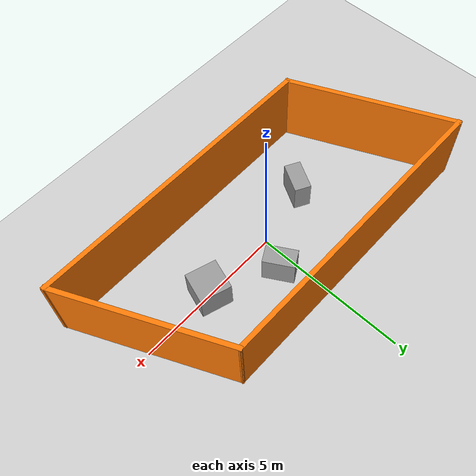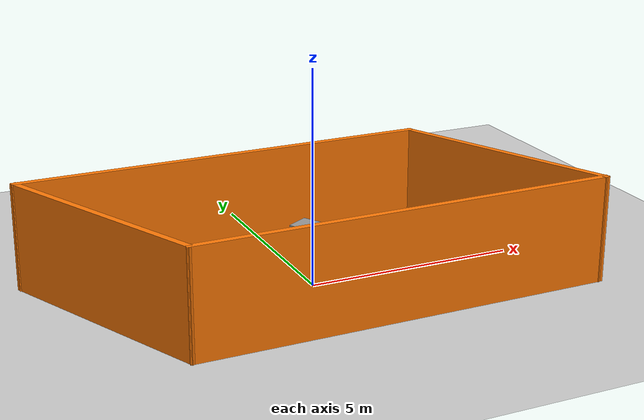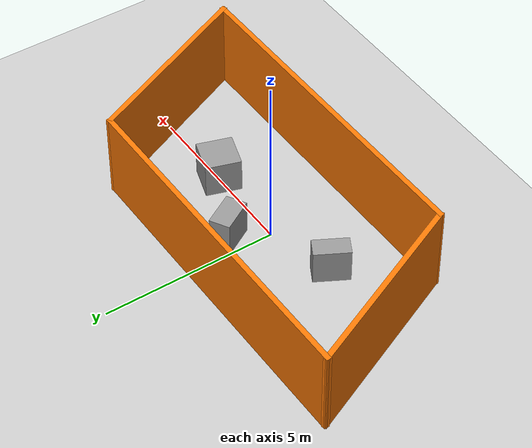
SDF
<sdf version="1.7">
 <world name="default">
  <light name="sun" type="directional">
   <pose>0 0 10 0 -0 0</pose>
   <diffuse>0.8 0.8 0.8 1</diffuse>
   <specular>0.2 0.2 0.2 1</specular>
   <attenuation>
    <range>1000</range>
    <constant>0.9</constant>
    <linear>0.01</linear>
    <quadratic>0.001</quadratic>
   </attenuation>
   <direction>-0.5 0.1 -0.9</direction>
   <spot><inner_angle>0</inner_angle><outer_angle>0</outer_angle><falloff>0</falloff></spot>
  </light>
  <model name="ground_plane">
   <static>1</static>
   <link name="link">
    <collision name="collision">
     <geometry><plane><normal>0 0 1</normal><size>100 100</size></plane></geometry>
     <surface>
      <contact><collide_bitmask>65535</collide_bitmask></contact>
      <friction><ode><mu>100</mu><mu2>50</mu2></ode></friction>
     </surface>
    </collision>
    <visual name="visual">
     <cast_shadows>0</cast_shadows>
     <geometry><plane><normal>0 0 1</normal><size>100 100</size></plane></geometry>
     <material>
      <script><uri>file://media/materials/scripts/gazebo.material</uri><name>Gazebo/Grey</name></script>
     </material>
    </visual>
   </link>
  </model>
  <gravity>0 0 -9.8</gravity>
  <magnetic_field>6e-06 2.3e-05 -4.2e-05</magnetic_field>
  <atmosphere type="adiabatic"/>
  <physics type="ode">
   <max_step_size>0.001</max_step_size>
   <real_time_factor>1</real_time_factor>
   <real_time_update_rate>1000</real_time_update_rate>
  </physics>
  <scene><ambient>0.4 0.4 0.4 1</ambient><background>0.7 0.7 0.7 1</background><shadows>1</shadows></scene>
  <spherical_coordinates>
   <surface_model>EARTH_WGS84</surface_model>
   <latitude_deg>0</latitude_deg>
   <longitude_deg>0</longitude_deg>
   <elevation>0</elevation>
   <heading_deg>0</heading_deg>
  </spherical_coordinates>
  <model name="trapezoidal_decomposition">
   <link name="Wall_11">
    <collision name="Wall_11_Collision">
     <geometry><box><size>5.60083 0.15 2.5</size></box></geometry>
     <pose>0 0 1.25 0 -0 0</pose>
    </collision>
    <visual name="Wall_11_Visual">
     <pose>0 0 1.25 0 -0 0</pose>
     <geometry><box><size>5.60083 0.15 2.5</size></box></geometry>
     <material>
      <script><uri>file://media/materials/scripts/gazebo.material</uri><name>Gazebo/Grey</name></script>
      <ambient>0.996078 0.47451 0.0196078 1</ambient>
     </material>
     <meta><layer>0</layer></meta>
    </visual>
    <pose>-4.86305 -0.019054 0 0 -0 1.99308</pose>
   </link>
   <link name="Wall_15">
    <collision name="Wall_15_Collision">
     <geometry><box><size>9.87586 0.15 2.5</size></box></geometry>
     <pose>0 0 1.25 0 -0 0</pose>
    </collision>
    <visual name="Wall_15_Visual">
     <pose>0 0 1.25 0 -0 0</pose>
     <geometry><box><size>9.87586 0.15 2.5</size></box></geometry>
     <material>
      <script><uri>file://media/materials/scripts/gazebo.material</uri><name>Gazebo/Grey</name></script>
      <ambient>0.996078 0.47451 0.0196078 1</ambient>
     </material>
     <meta><layer>0</layer></meta>
    </visual>
    <pose>1.11695 -2.46705 0 0 -0 0.007814</pose>
   </link>
   <link name="Wall_16">
    <collision name="Wall_16_Collision">
     <geometry><box><size>5.56619 0.15 2.5</size></box></geometry>
     <pose>0 0 1.25 0 -0 0</pose>
    </collision>
    <visual name="Wall_16_Visual">
     <pose>0 0 1.25 0 -0 0</pose>
     <geometry><box><size>5.56619 0.15 2.5</size></box></geometry>
     <material>
      <script><uri>file://media/materials/scripts/gazebo.material</uri><name>Gazebo/Grey</name></script>
      <ambient>0.996078 0.47451 0.0196078 1</ambient>
     </material>
     <meta><layer>0</layer></meta>
    </visual>
    <pose>4.86295 0.037946 0 0 -0 1.99596</pose>
   </link>
   <link name="Wall_21">
    <collision name="Wall_21_Collision">
     <geometry><box><size>9.87607 0.15 2.5</size></box></geometry>
     <pose>0 0 1.25 0 -0 0</pose>
    </collision>
    <visual name="Wall_21_Visual">
     <pose>0 0 1.25 0 -0 0</pose>
     <geometry><box><size>9.87607 0.15 2.5</size></box></geometry>
     <material>
      <script><uri>file://media/materials/scripts/gazebo.material</uri><name>Gazebo/Grey</name></script>
      <ambient>0.996078 0.47451 0.0196078 1</ambient>
     </material>
     <meta><layer>0</layer></meta>
    </visual>
    <pose>-1.11705 2.48595 0 0 -0 0.003907</pose>
   </link>
   <static>1</static>
  </model>
  <model name="unit_box">
   <pose>-2 -0.500009 0.5 0 0 -0.499944</pose>
   <link name="link">
    <inertial>
     <mass>1</mass>
     <inertia>
      <ixx>0.166667</ixx>
      <ixy>0</ixy>
      <ixz>0</ixz>
      <iyy>0.166667</iyy>
      <iyz>0</iyz>
      <izz>0.166667</izz>
     </inertia>
    </inertial>
    <collision name="collision"><geometry><box><size>0.53393 1 1</size></box></geometry></collision>
    <visual name="visual">
     <geometry><box><size>0.53393 1 1</size></box></geometry>
     <material>
      <script><name>Gazebo/Grey</name><uri>file://media/materials/scripts/gazebo.material</uri></script>
     </material>
    </visual>
   </link>
  </model>
  <model name="unit_box_0">
   <pose>0.499992 0.999998 0.5 0 0 -2.61496</pose>
   <link name="link">
    <inertial>
     <mass>1</mass>
     <inertia>
      <ixx>0.166667</ixx>
      <ixy>0</ixy>
      <ixz>0</ixz>
      <iyy>0.166667</iyy>
      <iyz>0</iyz>
      <izz>0.166667</izz>
     </inertia>
    </inertial>
    <collision name="collision"><geometry><box><size>0.592289 1 1</size></box></geometry></collision>
    <visual name="visual">
     <geometry><box><size>0.592289 1 1</size></box></geometry>
     <material>
      <script><name>Gazebo/Grey</name><uri>file://media/materials/scripts/gazebo.material</uri></script>
     </material>
    </visual>
   </link>
  </model>
  <model name="unit_box_1">
   <pose>2.5 0 0.5 0 0 -0.307563</pose>
   <link name="link">
    <inertial>
     <mass>1</mass>
     <inertia>
      <ixx>0.166667</ixx>
      <ixy>0</ixy>
      <ixz>0</ixz>
      <iyy>0.166667</iyy>
      <iyz>0</iyz>
      <izz>0.166667</izz>
     </inertia>
    </inertial>
    <collision name="collision"><geometry><box><size>1 1 1</size></box></geometry></collision>
    <visual name="visual">
     <geometry><box><size>1 1 1</size></box></geometry>
     <material>
      <script><name>Gazebo/Grey</name><uri>file://media/materials/scripts/gazebo.material</uri></script>
     </material>
    </visual>
   </link>
  </model>
 </world>
</sdf>
